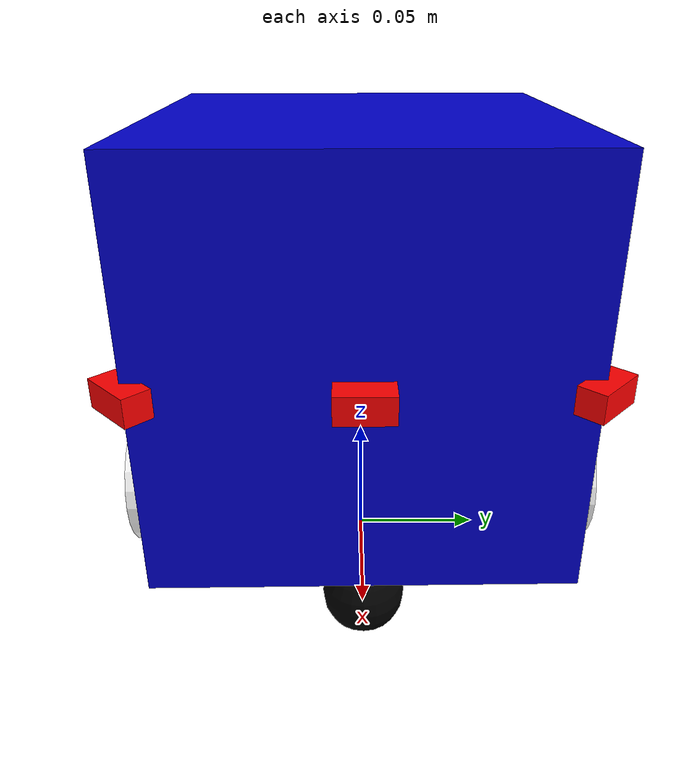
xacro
<?xml version="1.0"?>
<robot name="sima_robot" xmlns:xacro="http://www.ros.org/wiki/xacro">

  <material name="blue">
    <color rgba="0 0 0.8 1"/>
  </material>
  <material name="white">
    <color rgba="1 1 1 1"/>
  </material>
  <material name="black">
    <color rgba="0 0 0 1"/>
  </material>
  <material name="red">
    <color rgba="1 0 0 1"/>
  </material>

  <link name="base_footprint">
    <inertial>
      <mass value="0.0001"/>
      <inertia ixx="0.000001" ixy="0.0" ixz="0.0" iyy="0.000001" iyz="0.0" izz="0.000001"/>
    </inertial>
  </link>

  <joint name="base_joint" type="fixed">
    <parent link="base_footprint"/>
    <child link="base_link"/>
    <origin xyz="0 0 0.105" rpy="0 0 0"/>
  </joint>

  <link name="base_link">
    <visual>
      <geometry>
        <box size="0.15 0.15 0.15"/>
      </geometry>
      <material name="blue"/>
    </visual>
    <collision>
      <geometry>
        <box size="0.15 0.15 0.15"/>
      </geometry>
    </collision>
    <inertial>
      <mass value="2.0"/>
      <inertia ixx="0.0075" ixy="0.0" ixz="0.0" iyy="0.0075" iyz="0.0" izz="0.0075"/>
    </inertial>
  </link>

  <link name="left_wheel">
    <visual>
      <geometry>
        <cylinder radius="0.03" length="0.02"/>
      </geometry>
      <material name="white"/>
    </visual>
    <collision>
      <geometry>
        <cylinder radius="0.03" length="0.02"/>
      </geometry>
    </collision>
    <inertial>
      <mass value="0.2"/>
      <inertia ixx="0.0002" ixy="0" ixz="0" iyy="0.0002" iyz="0" izz="0.0002"/>
    </inertial>
  </link>

  <joint name="left_wheel_joint" type="continuous">
    <parent link="base_link"/>
    <child link="left_wheel"/>
    <origin xyz="0 0.085 -0.075" rpy="-1.57 0 0"/>
    <axis xyz="0 0 1"/>
  </joint>

  <link name="right_wheel">
    <visual>
      <geometry>
        <cylinder radius="0.03" length="0.02"/>
      </geometry>
      <material name="white"/>
    </visual>
    <collision>
      <geometry>
        <cylinder radius="0.03" length="0.02"/>
      </geometry>
    </collision>
    <inertial>
      <mass value="0.2"/>
      <inertia ixx="0.0002" ixy="0" ixz="0" iyy="0.0002" iyz="0" izz="0.0002"/>
    </inertial>
  </link>

  <joint name="right_wheel_joint" type="continuous">
    <parent link="base_link"/>
    <child link="right_wheel"/>
    <origin xyz="0 -0.085 -0.075" rpy="-1.57 0 0"/>
    <axis xyz="0 0 1"/>
  </joint>

  <link name="front_caster">
    <visual>
      <geometry>
        <sphere radius="0.015"/>
      </geometry>
      <material name="black"/>
    </visual>
    <collision>
      <geometry>
        <sphere radius="0.015"/>
      </geometry>
    </collision>
    <inertial>
      <mass value="0.05"/>
      <inertia ixx="0.00001" ixy="0" ixz="0" iyy="0.00001" iyz="0" izz="0.00001"/>
    </inertial>
  </link>

  <joint name="front_caster_joint" type="fixed">
    <parent link="base_link"/>
    <child link="front_caster"/>
    <origin xyz="0.06 0 -0.09"/>
  </joint>

  <link name="back_caster">
    <visual>
      <geometry>
        <sphere radius="0.015"/>
      </geometry>
      <material name="black"/>
    </visual>
    <collision>
      <geometry>
        <sphere radius="0.015"/>
      </geometry>
    </collision>
    <inertial>
      <mass value="0.05"/>
      <inertia ixx="0.00001" ixy="0" ixz="0" iyy="0.00001" iyz="0" izz="0.00001"/>
    </inertial>
  </link>

  <joint name="back_caster_joint" type="fixed">
    <parent link="base_link"/>
    <child link="back_caster"/>
    <origin xyz="-0.06 0 -0.09"/>
  </joint>

  <gazebo reference="left_wheel">
    <mu1>10.0</mu1>
    <mu2>10.0</mu2>
    <kp>500000.0</kp>
    <kd>10.0</kd>
    <minDepth>0.001</minDepth>
    <maxVel>1.0</maxVel>
    <material>Gazebo/White</material>
  </gazebo>

  <gazebo reference="right_wheel">
    <mu1>10.0</mu1>
    <mu2>10.0</mu2>
    <kp>500000.0</kp>
    <kd>10.0</kd>
    <minDepth>0.001</minDepth>
    <maxVel>1.0</maxVel>
    <material>Gazebo/White</material>
  </gazebo>

  <gazebo reference="front_caster">
    <mu1>0.001</mu1>
    <mu2>0.001</mu2>
    <kp>1000000.0</kp>
    <kd>100.0</kd>
    <minDepth>0.001</minDepth>
    <maxVel>1.0</maxVel>
    <material>Gazebo/Black</material>
  </gazebo>

  <gazebo reference="back_caster">
    <mu1>0.001</mu1>
    <mu2>0.001</mu2>
    <kp>1000000.0</kp>
    <kd>100.0</kd>
    <minDepth>0.001</minDepth>
    <maxVel>1.0</maxVel>
    <material>Gazebo/Black</material>
  </gazebo>

  <xacro:arg name="robot_name" default="sima1"/>

  <xacro:macro name="vl53_sensor" params="name x y yaw color">
    <link name="${name}_link">
      <visual>
        <geometry>
          <box size="0.01 0.02 0.01"/>
        </geometry>
        <material name="${color}"/>
      </visual>
      <collision>
        <geometry>
          <box size="0.01 0.02 0.01"/>
        </geometry>
      </collision>
      <inertial>
        <mass value="0.01"/>
        <inertia ixx="0.000001" ixy="0" ixz="0" iyy="0.000001" iyz="0" izz="0.000001"/>
      </inertial>
    </link>

    <joint name="${name}_joint" type="fixed">
      <parent link="base_link"/>
      <child link="${name}_link"/>
      <origin xyz="${x} ${y} 0.0" rpy="0 0 ${yaw}"/>
    </joint>

    <gazebo reference="${name}_link">
      <sensor name="${name}" type="ray">
        <pose>0 0 0 0 0 0</pose>
        <always_on>true</always_on>
        <visualize>true</visualize> <update_rate>20</update_rate>

        <ray>
          <scan>
            <horizontal>
              <samples>1</samples>            <resolution>1</resolution>
              <min_angle>-0.05</min_angle>     <max_angle>0.05</max_angle>
            </horizontal>
          </scan>
          <range>
            <min>0.02</min> <max>4.0</max>  <resolution>0.01</resolution>
          </range>
          <noise>
            <type>gaussian</type>
            <mean>0.0</mean>
            <stddev>0.01</stddev> </noise>
        </ray>

        <plugin name="${name}_controller" filename="libgazebo_ros_ray_sensor.so">
            <ros>
                <namespace>/$(arg robot_name)</namespace>
                <remapping>~/out:=${name}</remapping>
            </ros>
            <output_type>sensor_msgs/LaserScan</output_type>
            <frame_name>${name}_link</frame_name>
            <radiation_type>infrared</radiation_type>
        </plugin>
      </sensor>
    </gazebo>
  </xacro:macro>

    <xacro:vl53_sensor name="vl53_left"   x="0.075" y="0.075"  yaw="0.785"  color="red"/>
    <xacro:vl53_sensor name="vl53_center" x="0.08"  y="0.0"    yaw="0.0"    color="red"/>
    <xacro:vl53_sensor name="vl53_right"  x="0.075" y="-0.075" yaw="-0.785" color="red"/>

  <gazebo>
    <plugin name="diff_drive" filename="libgazebo_ros_diff_drive.so">
      <ros>
        <namespace>/$(arg robot_name)</namespace>
        <remapping>cmd_vel:=cmd_vel</remapping>
        <remapping>odom:=odom</remapping>
      </ros>
      <left_joint>left_wheel_joint</left_joint>
      <right_joint>right_wheel_joint</right_joint>
      <wheel_separation>0.17</wheel_separation>
      <wheel_diameter>0.06</wheel_diameter>

      <publish_odom>true</publish_odom>
      <publish_odom_tf>false</publish_odom_tf>
      <publish_wheel_tf>false</publish_wheel_tf>
      <publish_wheel_joint_state>true</publish_wheel_joint_state>
      <odometry_frame>odom</odometry_frame>
      <robot_base_frame>base_footprint</robot_base_frame>

      <max_wheel_torque>20</max_wheel_torque>
      <max_wheel_acceleration>2.0</max_wheel_acceleration>

    </plugin>
  </gazebo>

  <gazebo>
    <plugin name="gazebo_ros_p3d" filename="libgazebo_ros_p3d.so">
      <ros>
        <namespace>/$(arg robot_name)</namespace>
        <remapping>odom:=ground_truth_pose</remapping>
      </ros>
      <frame_name>map</frame_name> <body_name>base_footprint</body_name> <update_rate>50.0</update_rate>
      <xyz_offset>0 0 0</xyz_offset>
      <rpy_offset>0 0 0</rpy_offset>
      <gaussian_noise>0.0</gaussian_noise>
    </plugin>
  </gazebo>

</robot>
